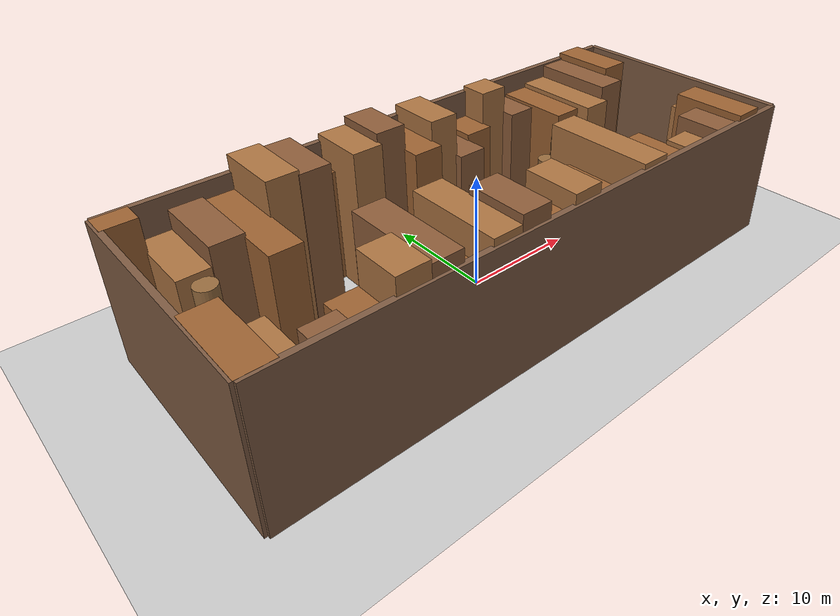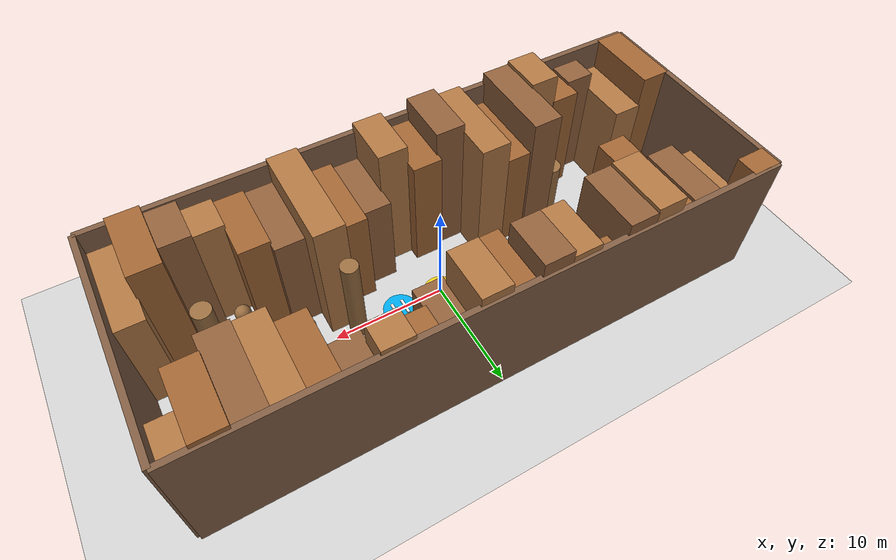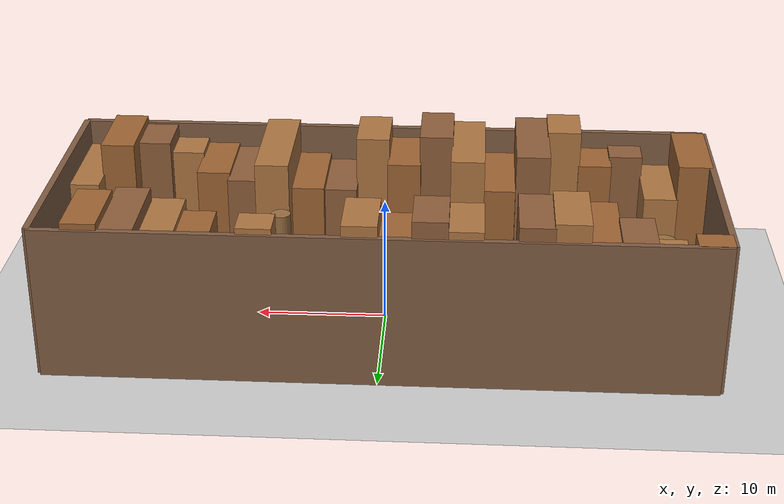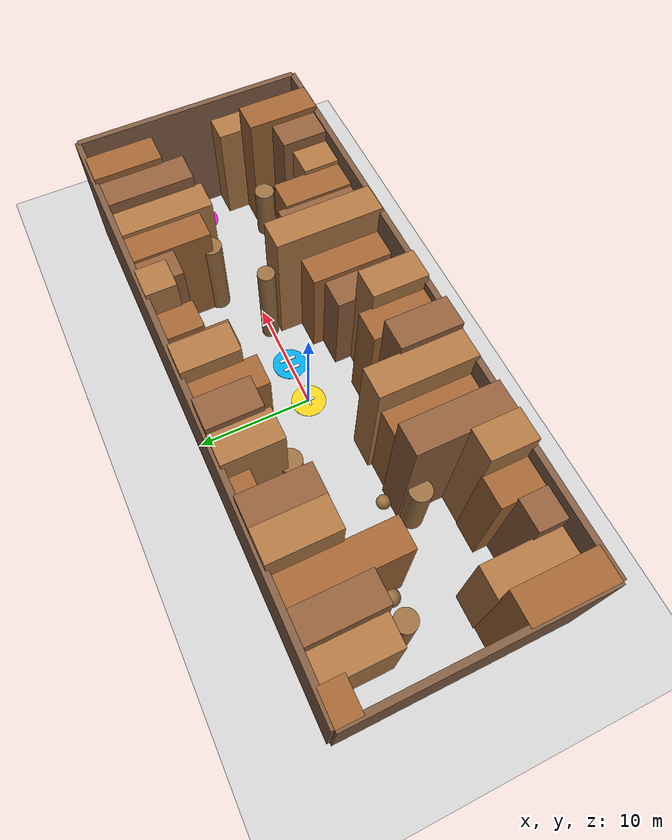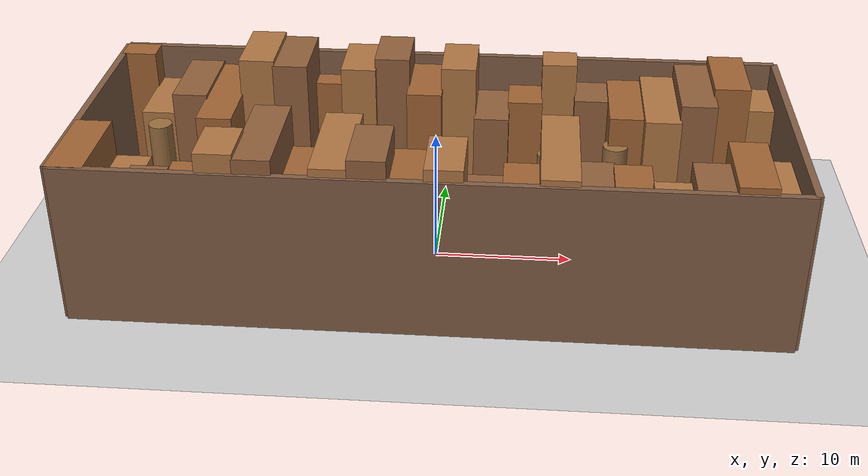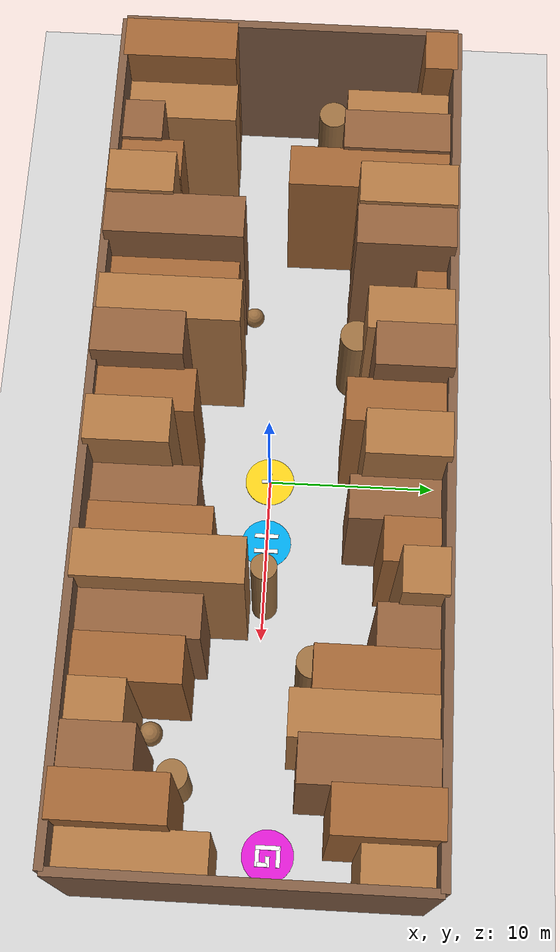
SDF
<?xml version="1.0" ?>
<sdf version="1.6">
  <world name="canyon_course">
    <include><uri>model://sun</uri></include>
    <include><uri>model://ground_plane</uri></include>

    <!--  50m x 20m winding canyon                                 -->
    <!--  S-shaped centerline + jagged rock walls + pillars, corridor navigation -->
    <!--  SPAWN=(0,0)  HOME=(4,0)  GOAL=(22.5,1.1)                 -->
    <!--  Straight section x in [-3,3] keeps homing corridor clear -->

    <scene>
      <ambient>0.50 0.38 0.28 1</ambient>
      <background>0.82 0.68 0.50 1</background>
      <shadows>1</shadows>
    </scene>

    <!-- End walls + north/south outer walls (h=12) -->
    <model name="perim_w">
      <static>true</static>
      <pose>-25.00 0.00 6.0 0 0 0</pose>
      <link name="body">
        <collision name="c"><geometry><box><size>0.50 20.00 12.0</size></box></geometry></collision>
        <visual name="v"><geometry><box><size>0.50 20.00 12.0</size></box></geometry>
          <material><ambient>0.40 0.28 0.20 1</ambient><diffuse>0.50 0.36 0.26 1</diffuse></material>
        </visual>
      </link>
    </model>
    <model name="perim_e">
      <static>true</static>
      <pose>25.00 0.00 6.0 0 0 0</pose>
      <link name="body">
        <collision name="c"><geometry><box><size>0.50 20.00 12.0</size></box></geometry></collision>
        <visual name="v"><geometry><box><size>0.50 20.00 12.0</size></box></geometry>
          <material><ambient>0.40 0.28 0.20 1</ambient><diffuse>0.50 0.36 0.26 1</diffuse></material>
        </visual>
      </link>
    </model>
    <model name="perim_s">
      <static>true</static>
      <pose>0.00 -10.00 6.0 0 0 0</pose>
      <link name="body">
        <collision name="c"><geometry><box><size>50.00 0.50 12.0</size></box></geometry></collision>
        <visual name="v"><geometry><box><size>50.00 0.50 12.0</size></box></geometry>
          <material><ambient>0.40 0.28 0.20 1</ambient><diffuse>0.50 0.36 0.26 1</diffuse></material>
        </visual>
      </link>
    </model>
    <model name="perim_n">
      <static>true</static>
      <pose>0.00 10.00 6.0 0 0 0</pose>
      <link name="body">
        <collision name="c"><geometry><box><size>50.00 0.50 12.0</size></box></geometry></collision>
        <visual name="v"><geometry><box><size>50.00 0.50 12.0</size></box></geometry>
          <material><ambient>0.40 0.28 0.20 1</ambient><diffuse>0.50 0.36 0.26 1</diffuse></material>
        </visual>
      </link>
    </model>

    <!-- Canyon rock walls (40 blocks, h 9~13.5m, jagged inner edges) -->
    <model name="rock_000">
      <static>true</static>
      <pose>-23.750 9.037 6.007 0 0 0</pose>
      <link name="body">
        <collision name="c"><geometry><box><size>2.600 1.926 12.014</size></box></geometry></collision>
        <visual name="v"><geometry><box><size>2.600 1.926 12.014</size></box></geometry>
          <material><ambient>0.50 0.30 0.16 1</ambient><diffuse>0.62 0.39 0.20 1</diffuse></material>
        </visual>
      </link>
    </model>
    <model name="rock_001">
      <static>true</static>
      <pose>-23.750 -6.631 6.007 0 0 0</pose>
      <link name="body">
        <collision name="c"><geometry><box><size>2.600 6.738 12.014</size></box></geometry></collision>
        <visual name="v"><geometry><box><size>2.600 6.738 12.014</size></box></geometry>
          <material><ambient>0.50 0.30 0.16 1</ambient><diffuse>0.62 0.39 0.20 1</diffuse></material>
        </visual>
      </link>
    </model>
    <model name="rock_002">
      <static>true</static>
      <pose>-21.250 6.802 4.632 0 0 0</pose>
      <link name="body">
        <collision name="c"><geometry><box><size>2.600 6.396 9.264</size></box></geometry></collision>
        <visual name="v"><geometry><box><size>2.600 6.396 9.264</size></box></geometry>
          <material><ambient>0.55 0.36 0.20 1</ambient><diffuse>0.68 0.46 0.26 1</diffuse></material>
        </visual>
      </link>
    </model>
    <model name="rock_003">
      <static>true</static>
      <pose>-21.250 -6.583 4.632 0 0 0</pose>
      <link name="body">
        <collision name="c"><geometry><box><size>2.600 6.833 9.264</size></box></geometry></collision>
        <visual name="v"><geometry><box><size>2.600 6.833 9.264</size></box></geometry>
          <material><ambient>0.55 0.36 0.20 1</ambient><diffuse>0.68 0.46 0.26 1</diffuse></material>
        </visual>
      </link>
    </model>
    <model name="rock_004">
      <static>true</static>
      <pose>-18.750 6.724 5.448 0 0 0</pose>
      <link name="body">
        <collision name="c"><geometry><box><size>2.600 6.551 10.896</size></box></geometry></collision>
        <visual name="v"><geometry><box><size>2.600 6.551 10.896</size></box></geometry>
          <material><ambient>0.44 0.28 0.18 1</ambient><diffuse>0.56 0.37 0.23 1</diffuse></material>
        </visual>
      </link>
    </model>
    <model name="rock_005">
      <static>true</static>
      <pose>-18.750 -8.693 5.448 0 0 0</pose>
      <link name="body">
        <collision name="c"><geometry><box><size>2.600 2.614 10.896</size></box></geometry></collision>
        <visual name="v"><geometry><box><size>2.600 2.614 10.896</size></box></geometry>
          <material><ambient>0.44 0.28 0.18 1</ambient><diffuse>0.56 0.37 0.23 1</diffuse></material>
        </visual>
      </link>
    </model>
    <model name="rock_006">
      <static>true</static>
      <pose>-16.250 5.155 5.310 0 0 0</pose>
      <link name="body">
        <collision name="c"><geometry><box><size>2.600 9.691 10.620</size></box></geometry></collision>
        <visual name="v"><geometry><box><size>2.600 9.691 10.620</size></box></geometry>
          <material><ambient>0.50 0.30 0.16 1</ambient><diffuse>0.62 0.39 0.20 1</diffuse></material>
        </visual>
      </link>
    </model>
    <model name="rock_007">
      <static>true</static>
      <pose>-16.250 -8.045 5.310 0 0 0</pose>
      <link name="body">
        <collision name="c"><geometry><box><size>2.600 3.909 10.620</size></box></geometry></collision>
        <visual name="v"><geometry><box><size>2.600 3.909 10.620</size></box></geometry>
          <material><ambient>0.50 0.30 0.16 1</ambient><diffuse>0.62 0.39 0.20 1</diffuse></material>
        </visual>
      </link>
    </model>
    <model name="rock_008">
      <static>true</static>
      <pose>-13.750 7.220 6.696 0 0 0</pose>
      <link name="body">
        <collision name="c"><geometry><box><size>2.600 5.560 13.392</size></box></geometry></collision>
        <visual name="v"><geometry><box><size>2.600 5.560 13.392</size></box></geometry>
          <material><ambient>0.55 0.36 0.20 1</ambient><diffuse>0.68 0.46 0.26 1</diffuse></material>
        </visual>
      </link>
    </model>
    <model name="rock_009">
      <static>true</static>
      <pose>-13.750 -8.079 6.696 0 0 0</pose>
      <link name="body">
        <collision name="c"><geometry><box><size>2.600 3.842 13.392</size></box></geometry></collision>
        <visual name="v"><geometry><box><size>2.600 3.842 13.392</size></box></geometry>
          <material><ambient>0.55 0.36 0.20 1</ambient><diffuse>0.68 0.46 0.26 1</diffuse></material>
        </visual>
      </link>
    </model>
    <model name="rock_010">
      <static>true</static>
      <pose>-11.250 7.186 6.530 0 0 0</pose>
      <link name="body">
        <collision name="c"><geometry><box><size>2.600 5.628 13.060</size></box></geometry></collision>
        <visual name="v"><geometry><box><size>2.600 5.628 13.060</size></box></geometry>
          <material><ambient>0.44 0.28 0.18 1</ambient><diffuse>0.56 0.37 0.23 1</diffuse></material>
        </visual>
      </link>
    </model>
    <model name="rock_011">
      <static>true</static>
      <pose>-11.250 -6.014 6.530 0 0 0</pose>
      <link name="body">
        <collision name="c"><geometry><box><size>2.600 7.972 13.060</size></box></geometry></collision>
        <visual name="v"><geometry><box><size>2.600 7.972 13.060</size></box></geometry>
          <material><ambient>0.44 0.28 0.18 1</ambient><diffuse>0.56 0.37 0.23 1</diffuse></material>
        </visual>
      </link>
    </model>
    <model name="rock_012">
      <static>true</static>
      <pose>-8.750 9.015 5.014 0 0 0</pose>
      <link name="body">
        <collision name="c"><geometry><box><size>2.600 1.970 10.029</size></box></geometry></collision>
        <visual name="v"><geometry><box><size>2.600 1.970 10.029</size></box></geometry>
          <material><ambient>0.50 0.30 0.16 1</ambient><diffuse>0.62 0.39 0.20 1</diffuse></material>
        </visual>
      </link>
    </model>
    <model name="rock_013">
      <static>true</static>
      <pose>-8.750 -6.140 5.014 0 0 0</pose>
      <link name="body">
        <collision name="c"><geometry><box><size>2.600 7.720 10.029</size></box></geometry></collision>
        <visual name="v"><geometry><box><size>2.600 7.720 10.029</size></box></geometry>
          <material><ambient>0.50 0.30 0.16 1</ambient><diffuse>0.62 0.39 0.20 1</diffuse></material>
        </visual>
      </link>
    </model>
    <model name="rock_014">
      <static>true</static>
      <pose>-6.250 7.580 6.301 0 0 0</pose>
      <link name="body">
        <collision name="c"><geometry><box><size>2.600 4.839 12.602</size></box></geometry></collision>
        <visual name="v"><geometry><box><size>2.600 4.839 12.602</size></box></geometry>
          <material><ambient>0.55 0.36 0.20 1</ambient><diffuse>0.68 0.46 0.26 1</diffuse></material>
        </visual>
      </link>
    </model>
    <model name="rock_015">
      <static>true</static>
      <pose>-6.250 -5.955 6.301 0 0 0</pose>
      <link name="body">
        <collision name="c"><geometry><box><size>2.600 8.089 12.602</size></box></geometry></collision>
        <visual name="v"><geometry><box><size>2.600 8.089 12.602</size></box></geometry>
          <material><ambient>0.55 0.36 0.20 1</ambient><diffuse>0.68 0.46 0.26 1</diffuse></material>
        </visual>
      </link>
    </model>
    <model name="rock_016">
      <static>true</static>
      <pose>-3.750 7.815 6.656 0 0 0</pose>
      <link name="body">
        <collision name="c"><geometry><box><size>2.600 4.370 13.313</size></box></geometry></collision>
        <visual name="v"><geometry><box><size>2.600 4.370 13.313</size></box></geometry>
          <material><ambient>0.44 0.28 0.18 1</ambient><diffuse>0.56 0.37 0.23 1</diffuse></material>
        </visual>
      </link>
    </model>
    <model name="rock_017">
      <static>true</static>
      <pose>-3.750 -7.440 6.656 0 0 0</pose>
      <link name="body">
        <collision name="c"><geometry><box><size>2.600 5.120 13.313</size></box></geometry></collision>
        <visual name="v"><geometry><box><size>2.600 5.120 13.313</size></box></geometry>
          <material><ambient>0.44 0.28 0.18 1</ambient><diffuse>0.56 0.37 0.23 1</diffuse></material>
        </visual>
      </link>
    </model>
    <model name="rock_018">
      <static>true</static>
      <pose>-1.250 7.100 5.597 0 0 0</pose>
      <link name="body">
        <collision name="c"><geometry><box><size>2.600 5.800 11.193</size></box></geometry></collision>
        <visual name="v"><geometry><box><size>2.600 5.800 11.193</size></box></geometry>
          <material><ambient>0.50 0.30 0.16 1</ambient><diffuse>0.62 0.39 0.20 1</diffuse></material>
        </visual>
      </link>
    </model>
    <model name="rock_019">
      <static>true</static>
      <pose>-1.250 -7.100 5.597 0 0 0</pose>
      <link name="body">
        <collision name="c"><geometry><box><size>2.600 5.800 11.193</size></box></geometry></collision>
        <visual name="v"><geometry><box><size>2.600 5.800 11.193</size></box></geometry>
          <material><ambient>0.50 0.30 0.16 1</ambient><diffuse>0.62 0.39 0.20 1</diffuse></material>
        </visual>
      </link>
    </model>
    <model name="rock_020">
      <static>true</static>
      <pose>1.250 7.640 6.427 0 0 0</pose>
      <link name="body">
        <collision name="c"><geometry><box><size>2.600 4.720 12.854</size></box></geometry></collision>
        <visual name="v"><geometry><box><size>2.600 4.720 12.854</size></box></geometry>
          <material><ambient>0.55 0.36 0.20 1</ambient><diffuse>0.68 0.46 0.26 1</diffuse></material>
        </visual>
      </link>
    </model>
    <model name="rock_021">
      <static>true</static>
      <pose>1.250 -7.640 6.427 0 0 0</pose>
      <link name="body">
        <collision name="c"><geometry><box><size>2.600 4.720 12.854</size></box></geometry></collision>
        <visual name="v"><geometry><box><size>2.600 4.720 12.854</size></box></geometry>
          <material><ambient>0.55 0.36 0.20 1</ambient><diffuse>0.68 0.46 0.26 1</diffuse></material>
        </visual>
      </link>
    </model>
    <model name="rock_022">
      <static>true</static>
      <pose>3.750 7.319 4.569 0 0 0</pose>
      <link name="body">
        <collision name="c"><geometry><box><size>2.600 5.362 9.138</size></box></geometry></collision>
        <visual name="v"><geometry><box><size>2.600 5.362 9.138</size></box></geometry>
          <material><ambient>0.44 0.28 0.18 1</ambient><diffuse>0.56 0.37 0.23 1</diffuse></material>
        </visual>
      </link>
    </model>
    <model name="rock_023">
      <static>true</static>
      <pose>3.750 -6.881 4.569 0 0 0</pose>
      <link name="body">
        <collision name="c"><geometry><box><size>2.600 6.237 9.138</size></box></geometry></collision>
        <visual name="v"><geometry><box><size>2.600 6.237 9.138</size></box></geometry>
          <material><ambient>0.44 0.28 0.18 1</ambient><diffuse>0.56 0.37 0.23 1</diffuse></material>
        </visual>
      </link>
    </model>
    <model name="rock_024">
      <static>true</static>
      <pose>6.250 8.290 4.826 0 0 0</pose>
      <link name="body">
        <collision name="c"><geometry><box><size>2.600 3.421 9.652</size></box></geometry></collision>
        <visual name="v"><geometry><box><size>2.600 3.421 9.652</size></box></geometry>
          <material><ambient>0.50 0.30 0.16 1</ambient><diffuse>0.62 0.39 0.20 1</diffuse></material>
        </visual>
      </link>
    </model>
    <model name="rock_025">
      <static>true</static>
      <pose>6.250 -6.394 4.826 0 0 0</pose>
      <link name="body">
        <collision name="c"><geometry><box><size>2.600 7.212 9.652</size></box></geometry></collision>
        <visual name="v"><geometry><box><size>2.600 7.212 9.652</size></box></geometry>
          <material><ambient>0.50 0.30 0.16 1</ambient><diffuse>0.62 0.39 0.20 1</diffuse></material>
        </visual>
      </link>
    </model>
    <model name="rock_026">
      <static>true</static>
      <pose>8.750 8.737 6.223 0 0 0</pose>
      <link name="body">
        <collision name="c"><geometry><box><size>2.600 2.525 12.445</size></box></geometry></collision>
        <visual name="v"><geometry><box><size>2.600 2.525 12.445</size></box></geometry>
          <material><ambient>0.55 0.36 0.20 1</ambient><diffuse>0.68 0.46 0.26 1</diffuse></material>
        </visual>
      </link>
    </model>
    <model name="rock_027">
      <static>true</static>
      <pose>8.750 -5.383 6.223 0 0 0</pose>
      <link name="body">
        <collision name="c"><geometry><box><size>2.600 9.234 12.445</size></box></geometry></collision>
        <visual name="v"><geometry><box><size>2.600 9.234 12.445</size></box></geometry>
          <material><ambient>0.55 0.36 0.20 1</ambient><diffuse>0.68 0.46 0.26 1</diffuse></material>
        </visual>
      </link>
    </model>
    <model name="rock_028">
      <static>true</static>
      <pose>11.250 8.169 5.038 0 0 0</pose>
      <link name="body">
        <collision name="c"><geometry><box><size>2.600 3.661 10.077</size></box></geometry></collision>
        <visual name="v"><geometry><box><size>2.600 3.661 10.077</size></box></geometry>
          <material><ambient>0.44 0.28 0.18 1</ambient><diffuse>0.56 0.37 0.23 1</diffuse></material>
        </visual>
      </link>
    </model>
    <model name="rock_029">
      <static>true</static>
      <pose>11.250 -6.498 5.038 0 0 0</pose>
      <link name="body">
        <collision name="c"><geometry><box><size>2.600 7.005 10.077</size></box></geometry></collision>
        <visual name="v"><geometry><box><size>2.600 7.005 10.077</size></box></geometry>
          <material><ambient>0.44 0.28 0.18 1</ambient><diffuse>0.56 0.37 0.23 1</diffuse></material>
        </visual>
      </link>
    </model>
    <model name="rock_030">
      <static>true</static>
      <pose>13.750 6.520 5.177 0 0 0</pose>
      <link name="body">
        <collision name="c"><geometry><box><size>2.600 6.960 10.354</size></box></geometry></collision>
        <visual name="v"><geometry><box><size>2.600 6.960 10.354</size></box></geometry>
          <material><ambient>0.50 0.30 0.16 1</ambient><diffuse>0.62 0.39 0.20 1</diffuse></material>
        </visual>
      </link>
    </model>
    <model name="rock_031">
      <static>true</static>
      <pose>13.750 -6.879 5.177 0 0 0</pose>
      <link name="body">
        <collision name="c"><geometry><box><size>2.600 6.241 10.354</size></box></geometry></collision>
        <visual name="v"><geometry><box><size>2.600 6.241 10.354</size></box></geometry>
          <material><ambient>0.50 0.30 0.16 1</ambient><diffuse>0.62 0.39 0.20 1</diffuse></material>
        </visual>
      </link>
    </model>
    <model name="rock_032">
      <static>true</static>
      <pose>16.250 5.923 5.379 0 0 0</pose>
      <link name="body">
        <collision name="c"><geometry><box><size>2.600 8.154 10.757</size></box></geometry></collision>
        <visual name="v"><geometry><box><size>2.600 8.154 10.757</size></box></geometry>
          <material><ambient>0.55 0.36 0.20 1</ambient><diffuse>0.68 0.46 0.26 1</diffuse></material>
        </visual>
      </link>
    </model>
    <model name="rock_033">
      <static>true</static>
      <pose>16.250 -8.313 5.379 0 0 0</pose>
      <link name="body">
        <collision name="c"><geometry><box><size>2.600 3.373 10.757</size></box></geometry></collision>
        <visual name="v"><geometry><box><size>2.600 3.373 10.757</size></box></geometry>
          <material><ambient>0.55 0.36 0.20 1</ambient><diffuse>0.68 0.46 0.26 1</diffuse></material>
        </visual>
      </link>
    </model>
    <model name="rock_034">
      <static>true</static>
      <pose>18.750 6.210 5.929 0 0 0</pose>
      <link name="body">
        <collision name="c"><geometry><box><size>2.600 7.579 11.858</size></box></geometry></collision>
        <visual name="v"><geometry><box><size>2.600 7.579 11.858</size></box></geometry>
          <material><ambient>0.44 0.28 0.18 1</ambient><diffuse>0.56 0.37 0.23 1</diffuse></material>
        </visual>
      </link>
    </model>
    <model name="rock_035">
      <static>true</static>
      <pose>18.750 -7.898 5.929 0 0 0</pose>
      <link name="body">
        <collision name="c"><geometry><box><size>2.600 4.204 11.858</size></box></geometry></collision>
        <visual name="v"><geometry><box><size>2.600 4.204 11.858</size></box></geometry>
          <material><ambient>0.44 0.28 0.18 1</ambient><diffuse>0.56 0.37 0.23 1</diffuse></material>
        </visual>
      </link>
    </model>
    <model name="rock_036">
      <static>true</static>
      <pose>21.250 7.100 6.235 0 0 0</pose>
      <link name="body">
        <collision name="c"><geometry><box><size>2.600 5.801 12.470</size></box></geometry></collision>
        <visual name="v"><geometry><box><size>2.600 5.801 12.470</size></box></geometry>
          <material><ambient>0.50 0.30 0.16 1</ambient><diffuse>0.62 0.39 0.20 1</diffuse></material>
        </visual>
      </link>
    </model>
    <model name="rock_037">
      <static>true</static>
      <pose>21.250 -6.912 6.235 0 0 0</pose>
      <link name="body">
        <collision name="c"><geometry><box><size>2.600 6.176 12.470</size></box></geometry></collision>
        <visual name="v"><geometry><box><size>2.600 6.176 12.470</size></box></geometry>
          <material><ambient>0.50 0.30 0.16 1</ambient><diffuse>0.62 0.39 0.20 1</diffuse></material>
        </visual>
      </link>
    </model>
    <model name="rock_038">
      <static>true</static>
      <pose>23.750 7.947 4.982 0 0 0</pose>
      <link name="body">
        <collision name="c"><geometry><box><size>2.600 4.106 9.964</size></box></geometry></collision>
        <visual name="v"><geometry><box><size>2.600 4.106 9.964</size></box></geometry>
          <material><ambient>0.55 0.36 0.20 1</ambient><diffuse>0.68 0.46 0.26 1</diffuse></material>
        </visual>
      </link>
    </model>
    <model name="rock_039">
      <static>true</static>
      <pose>23.750 -5.884 4.982 0 0 0</pose>
      <link name="body">
        <collision name="c"><geometry><box><size>2.600 8.231 9.964</size></box></geometry></collision>
        <visual name="v"><geometry><box><size>2.600 8.231 9.964</size></box></geometry>
          <material><ambient>0.55 0.36 0.20 1</ambient><diffuse>0.68 0.46 0.26 1</diffuse></material>
        </visual>
      </link>
    </model>

    <!-- Rock pillars in passage (6, centerline +/-2.8m) -->
    <model name="pillar_00">
      <static>true</static>
      <pose>-21.000 2.800 4.394 0 0 0</pose>
      <link name="body">
        <collision name="c"><geometry><cylinder><radius>0.879</radius><length>8.789</length></cylinder></geometry></collision>
        <visual name="v"><geometry><cylinder><radius>0.879</radius><length>8.789</length></cylinder></geometry>
          <material><ambient>0.48 0.33 0.19 1</ambient><diffuse>0.60 0.43 0.25 1</diffuse></material>
        </visual>
      </link>
    </model>
    <model name="pillar_01">
      <static>true</static>
      <pose>-13.000 -3.050 3.225 0 0 0</pose>
      <link name="body">
        <collision name="c"><geometry><cylinder><radius>0.935</radius><length>6.450</length></cylinder></geometry></collision>
        <visual name="v"><geometry><cylinder><radius>0.935</radius><length>6.450</length></cylinder></geometry>
          <material><ambient>0.48 0.33 0.19 1</ambient><diffuse>0.60 0.43 0.25 1</diffuse></material>
        </visual>
      </link>
    </model>
    <model name="pillar_02">
      <static>true</static>
      <pose>-7.000 4.800 3.501 0 0 0</pose>
      <link name="body">
        <collision name="c"><geometry><cylinder><radius>0.991</radius><length>7.001</length></cylinder></geometry></collision>
        <visual name="v"><geometry><cylinder><radius>0.991</radius><length>7.001</length></cylinder></geometry>
          <material><ambient>0.48 0.33 0.19 1</ambient><diffuse>0.60 0.43 0.25 1</diffuse></material>
        </visual>
      </link>
    </model>
    <model name="pillar_03">
      <static>true</static>
      <pose>8.000 0.117 4.430 0 0 0</pose>
      <link name="body">
        <collision name="c"><geometry><cylinder><radius>0.745</radius><length>8.860</length></cylinder></geometry></collision>
        <visual name="v"><geometry><cylinder><radius>0.745</radius><length>8.860</length></cylinder></geometry>
          <material><ambient>0.48 0.33 0.19 1</ambient><diffuse>0.60 0.43 0.25 1</diffuse></material>
        </visual>
      </link>
    </model>
    <model name="pillar_04">
      <static>true</static>
      <pose>13.000 3.050 4.079 0 0 0</pose>
      <link name="body">
        <collision name="c"><geometry><cylinder><radius>0.910</radius><length>8.159</length></cylinder></geometry></collision>
        <visual name="v"><geometry><cylinder><radius>0.910</radius><length>8.159</length></cylinder></geometry>
          <material><ambient>0.48 0.33 0.19 1</ambient><diffuse>0.60 0.43 0.25 1</diffuse></material>
        </visual>
      </link>
    </model>
    <model name="pillar_05">
      <static>true</static>
      <pose>19.000 -4.300 2.653 0 0 0</pose>
      <link name="body">
        <collision name="c"><geometry><cylinder><radius>0.880</radius><length>5.306</length></cylinder></geometry></collision>
        <visual name="v"><geometry><cylinder><radius>0.880</radius><length>5.306</length></cylinder></geometry>
          <material><ambient>0.48 0.33 0.19 1</ambient><diffuse>0.60 0.43 0.25 1</diffuse></material>
        </visual>
      </link>
    </model>

    <!-- Boulders against walls (4 half-buried spheres) -->
    <model name="boulder_0">
      <static>true</static>
      <pose>-18.000 1.454 0 0 0 0</pose>
      <link name="body">
        <collision name="c">
          <pose>0 0 0.416 0 0 0</pose>
          <geometry><sphere><radius>0.756</radius></sphere></geometry>
        </collision>
        <visual name="v">
          <pose>0 0 0.416 0 0 0</pose>
          <geometry><sphere><radius>0.756</radius></sphere></geometry>
          <material><ambient>0.48 0.33 0.19 1</ambient><diffuse>0.60 0.43 0.25 1</diffuse></material>
        </visual>
      </link>
    </model>
    <model name="boulder_1">
      <static>true</static>
      <pose>-11.000 -1.578 0 0 0 0</pose>
      <link name="body">
        <collision name="c">
          <pose>0 0 0.339 0 0 0</pose>
          <geometry><sphere><radius>0.617</radius></sphere></geometry>
        </collision>
        <visual name="v">
          <pose>0 0 0.339 0 0 0</pose>
          <geometry><sphere><radius>0.617</radius></sphere></geometry>
          <material><ambient>0.48 0.33 0.19 1</ambient><diffuse>0.60 0.43 0.25 1</diffuse></material>
        </visual>
      </link>
    </model>
    <model name="boulder_2">
      <static>true</static>
      <pose>11.000 6.024 0 0 0 0</pose>
      <link name="body">
        <collision name="c">
          <pose>0 0 0.318 0 0 0</pose>
          <geometry><sphere><radius>0.579</radius></sphere></geometry>
        </collision>
        <visual name="v">
          <pose>0 0 0.318 0 0 0</pose>
          <geometry><sphere><radius>0.579</radius></sphere></geometry>
          <material><ambient>0.48 0.33 0.19 1</ambient><diffuse>0.60 0.43 0.25 1</diffuse></material>
        </visual>
      </link>
    </model>
    <model name="boulder_3">
      <static>true</static>
      <pose>16.000 -6.065 0 0 0 0</pose>
      <link name="body">
        <collision name="c">
          <pose>0 0 0.397 0 0 0</pose>
          <geometry><sphere><radius>0.722</radius></sphere></geometry>
        </collision>
        <visual name="v">
          <pose>0 0 0.397 0 0 0</pose>
          <geometry><sphere><radius>0.722</radius></sphere></geometry>
          <material><ambient>0.48 0.33 0.19 1</ambient><diffuse>0.60 0.43 0.25 1</diffuse></material>
        </visual>
      </link>
    </model>

    <!-- SPAWN: (0.0,0.0) - yellow disc + white cross -->
    <model name="spawn_marker">
      <static>true</static>
      <pose>0.00 0.00 0 0 0 0</pose>
      <link name="link">
        <visual name="disc">
          <pose>0 0 0.025 0 0 0</pose>
          <geometry><cylinder><radius>1.5</radius><length>0.05</length></cylinder></geometry>
          <material>
            <ambient>0.95 0.8 0.1 1</ambient><diffuse>0.95 0.8 0.1 1</diffuse>
            <specular>0.1 0.1 0.1 1</specular><emissive>0.95 0.8 0.1 1</emissive>
          </material>
        </visual>
        <visual name="plus_h">
          <pose>0 0 0.1 0 0 0</pose>
          <geometry><box><size>1.0 0.2 0.1</size></box></geometry>
          <material><ambient>1 1 1 1</ambient><diffuse>1 1 1 1</diffuse><emissive>0.4 0.4 0.4 1</emissive></material>
        </visual>
        <visual name="plus_v">
          <pose>0 0 0.1 0 0 0</pose>
          <geometry><box><size>0.2 1.0 0.1</size></box></geometry>
          <material><ambient>1 1 1 1</ambient><diffuse>1 1 1 1</diffuse><emissive>0.4 0.4 0.4 1</emissive></material>
        </visual>
      </link>
    </model>

    <!-- HOME: (4.0,0.0) - cyan disc + white H -->
    <model name="home_marker">
      <static>true</static>
      <pose>4.00 0.00 0 0 0 0</pose>
      <link name="link">
        <visual name="disc">
          <pose>0 0 0.025 0 0 0</pose>
          <geometry><cylinder><radius>1.5</radius><length>0.05</length></cylinder></geometry>
          <material>
            <ambient>0.0 0.65 0.9 1</ambient><diffuse>0.0 0.65 0.9 1</diffuse>
            <specular>0.1 0.1 0.1 1</specular><emissive>0.0 0.65 0.9 1</emissive>
          </material>
        </visual>
        <visual name="h_left">
          <pose>-0.475 0 0.1 0 0 0</pose>
          <geometry><box><size>0.25 1.45 0.1</size></box></geometry>
          <material><ambient>1 1 1 1</ambient><diffuse>1 1 1 1</diffuse><emissive>0.4 0.4 0.4 1</emissive></material>
        </visual>
        <visual name="h_right">
          <pose>0.475 0 0.1 0 0 0</pose>
          <geometry><box><size>0.25 1.45 0.1</size></box></geometry>
          <material><ambient>1 1 1 1</ambient><diffuse>1 1 1 1</diffuse><emissive>0.4 0.4 0.4 1</emissive></material>
        </visual>
        <visual name="h_mid">
          <pose>0 0 0.1 0 0 0</pose>
          <geometry><box><size>0.7 0.25 0.1</size></box></geometry>
          <material><ambient>1 1 1 1</ambient><diffuse>1 1 1 1</diffuse><emissive>0.4 0.4 0.4 1</emissive></material>
        </visual>
      </link>
    </model>

    <!-- GOAL: (22.5,1.1) - magenta disc + white G (inside east-end passage) -->
    <model name="goal_marker">
      <static>true</static>
      <pose>22.50 1.10 0 0 0 0</pose>
      <link name="link">
        <visual name="disc">
          <pose>0 0 0.025 0 0 0</pose>
          <geometry><cylinder><radius>1.5</radius><length>0.05</length></cylinder></geometry>
          <material>
            <ambient>0.85 0.1 0.8 1</ambient><diffuse>0.85 0.1 0.8 1</diffuse>
            <specular>0.1 0.1 0.1 1</specular><emissive>0.85 0.1 0.8 1</emissive>
          </material>
        </visual>
        <visual name="g_top">
          <pose>0 0.6 0.1 0 0 0</pose>
          <geometry><box><size>1.2 0.25 0.1</size></box></geometry>
          <material><ambient>1 1 1 1</ambient><diffuse>1 1 1 1</diffuse><emissive>0.4 0.4 0.4 1</emissive></material>
        </visual>
        <visual name="g_left">
          <pose>-0.475 0 0.1 0 0 0</pose>
          <geometry><box><size>0.25 1.45 0.1</size></box></geometry>
          <material><ambient>1 1 1 1</ambient><diffuse>1 1 1 1</diffuse><emissive>0.4 0.4 0.4 1</emissive></material>
        </visual>
        <visual name="g_bottom">
          <pose>0 -0.6 0.1 0 0 0</pose>
          <geometry><box><size>1.2 0.25 0.1</size></box></geometry>
          <material><ambient>1 1 1 1</ambient><diffuse>1 1 1 1</diffuse><emissive>0.4 0.4 0.4 1</emissive></material>
        </visual>
        <visual name="g_right_lower">
          <pose>0.475 -0.3 0.1 0 0 0</pose>
          <geometry><box><size>0.25 0.6 0.1</size></box></geometry>
          <material><ambient>1 1 1 1</ambient><diffuse>1 1 1 1</diffuse><emissive>0.4 0.4 0.4 1</emissive></material>
        </visual>
        <visual name="g_mid_stub">
          <pose>0.3 0 0.1 0 0 0</pose>
          <geometry><box><size>0.6 0.25 0.1</size></box></geometry>
          <material><ambient>1 1 1 1</ambient><diffuse>1 1 1 1</diffuse><emissive>0.4 0.4 0.4 1</emissive></material>
        </visual>
      </link>
    </model>
  </world>
</sdf>
